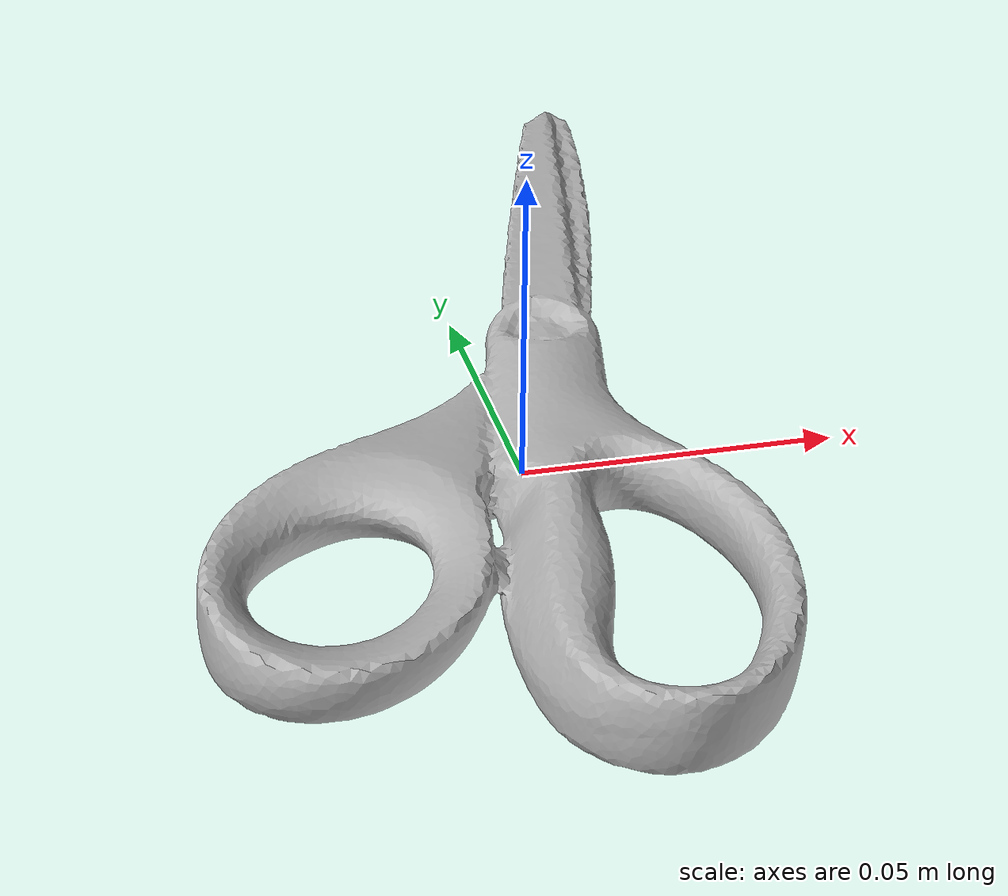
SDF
<?xml version='1.0'?>
<sdf version="1.4">
  <model name="scissors">
    <static>false</static>
    <link name="link">
      <inertial>
        <pose>0 0 0 1.1124705759062012 -1.5590402390897191 -2.9935291444767884</pose>
        <mass>4.680136717925133e-05</mass>
        <inertia>
          <ixx>8.694331860937039e-08</ixx>
          <ixy>8.271806125530277e-25</ixy>
          <ixz>-4.795062613393332e-24</ixz>
          <iyy>7.10209625183146e-08</iyy>
          <iyz>-1.3698159411492155e-24</iyz>
          <izz>1.693256625130799e-08</izz>
        </inertia>
      </inertial>
      <collision name="collision">
        <geometry>
          <mesh>
            <!-- Use a downsampled mesh for collisions -->
            <uri>model://037_scissors/google_16k/textured_simple.obj</uri>
	        </mesh>
        </geometry>
        <surface>
      </surface>
      </collision>
      <visual name="visual">
        <geometry>
          <mesh>
            <uri>model://037_scissors/google_16k/textured_simple.obj</uri>
	        </mesh>
        </geometry>
      </visual>
    </link>
  </model>
</sdf>
